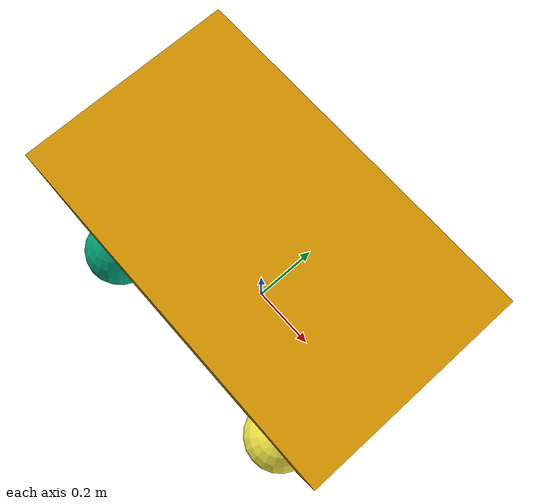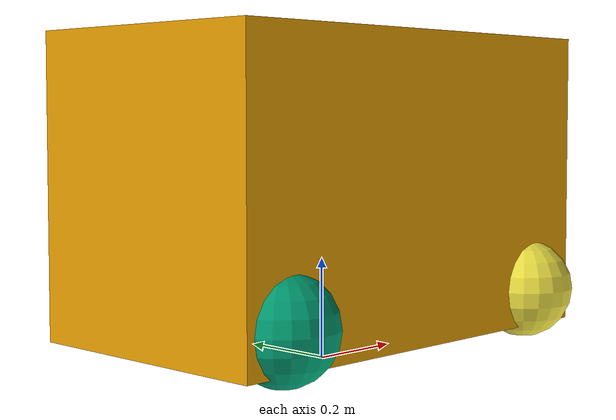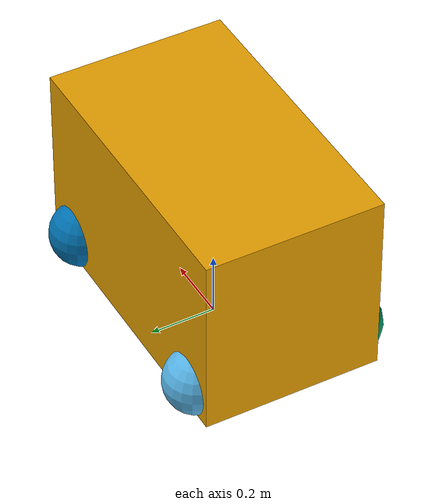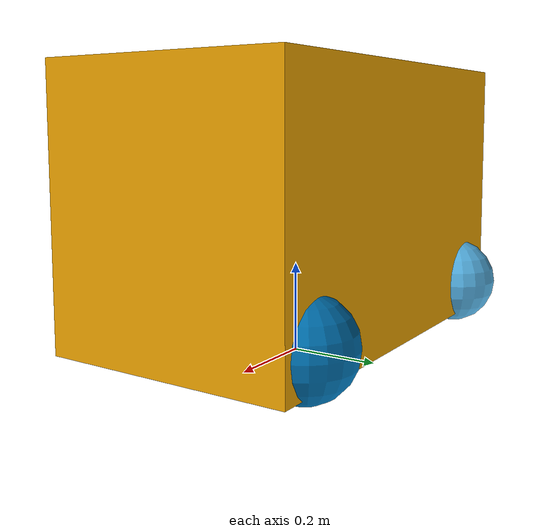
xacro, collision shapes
<?xml version="1.0"?>
<robot xmlns:xacro="http://www.ros.org/wiki/xacro" name="kuka_omnirob_iisy">
  <xacro:include filename="$(find omnirob_description)/urdf/omnirob_macro.xacro"/>

  <!-- Import omnirob urdf file -->
  <xacro:omnirob prefix="platform_" package_name="omnirob_description"/>

  <!-- Import control_xacro -->
  <xacro:include filename="$(find omnirob_description)/config/omnirob.ros2_control.xacro"/>
  <xacro:omnirob_ros2_control/>

</robot>

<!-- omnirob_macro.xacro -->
<robot name="omnirob" xmlns:xacro="http://www.ros.org/wiki/xacro" xmlns:gz="http://gazebosim.org/schema">
    <!-- Helper xacros -->
	<xacro:macro name="omnirob" params="prefix package_name">

		<link name="${prefix}base_link">
			<inertial>
				<mass value="250" />
				<origin rpy="0 0 0.1" xyz="0 -0.00000 0.24" />
				<inertia ixx="25.77086" ixy="-0.0" ixz="-0.0" iyy="53.79704" iyz="-0.0" izz="58.79601" />
			</inertial>
			<visual>
				<origin rpy="0 0 0" xyz="0 0 0" />
				<geometry>
					<mesh filename="package://${package_name}/meshes/omnirobBaseRot.dae" scale="1 1 1" />
				</geometry>
			</visual>
			<collision>
				<origin rpy="0 0 0" xyz="0 0 0.35" />
				<geometry>
					<box size="0.915855 0.547 0.585000"/>
				</geometry>
			</collision>
		</link>

		<link name="bl_wheel">
			<inertial>
				<origin rpy="0 0 0" xyz="0 0 0" />
				<inertia ixx="0.012412" ixy="-0.000712" ixz="0.000503" iyy="0.015218" iyz="-0.000004" izz="0.011764" />
				<mass value="0.400000" />
			</inertial>
			<visual>
				<origin rpy="0 0 0" xyz="0 0.037 0" />
				<geometry>
					<mesh filename="package://${package_name}/meshes/omnirobBLWheelRot.dae" scale="1 1 1" />
				</geometry>
			</visual>
			<collision>
				<geometry>
					<sphere radius="0.1"/>
				</geometry>
			</collision>
		</link>

		<joint name="bl_wheel_joint" type="continuous">
			<origin rpy="0 0 0" xyz="-0.347000 0.242000 0.130000" />
			<axis xyz="0 1 0" />
			<parent link="${prefix}base_link" />
			<child link="bl_wheel" />
			<limit effort="10000" velocity="10"/>
    		<dynamics damping="1.0" friction="1.0"/>
		</joint>

		<link name="br_wheel">
			<inertial>
				<origin rpy="0 0 0" xyz="0 0 0" />
				<inertia ixx="0.012412" ixy="-0.000712" ixz="0.000503" iyy="0.015218" iyz="-0.000004" izz="0.011764" />
				<mass value="0.400000" />
			</inertial>
			<visual>
				<origin rpy="0 0 0" xyz="0 -0.0 0" />
				<geometry>
					<mesh filename="package://${package_name}/meshes/omnirobBRWheelRot.dae" scale="1 1 1" />
				</geometry>
			</visual>
			<collision>
				<geometry>
					<sphere radius="0.1"/>
				</geometry>
			</collision>
		</link>

		<joint name="br_wheel_joint" type="continuous">
			<origin rpy="0 0 0" xyz="-0.347000 -0.242000 0.130000" />
			<axis xyz="0 1 0" />
			<parent link="${prefix}base_link" />
			<child link="br_wheel" />
			<limit effort="10000" velocity="10"/>
    		<dynamics damping="1.0" friction="1.0"/>
		</joint>

		<link name="fr_wheel">
			<inertial>
				<origin rpy="0 0 0" xyz="0 0 0" />
				<inertia ixx="0.012412" ixy="-0.000712" ixz="0.000503" iyy="0.015218" iyz="-0.000004" izz="0.011764" />
				<mass value="0.400000" />
			</inertial>
			<visual>
				<origin rpy="0 0 0" xyz="0 -0.0 0" />
				<geometry>
					<mesh filename="package://${package_name}/meshes/omnirobFRWheelRot.dae" scale="1 1 1" />
				</geometry>
			</visual>
			<collision>
				<geometry>
					<sphere radius="0.1"/>
				</geometry>
			</collision>
		</link>

		<joint name="fr_wheel_joint" type="continuous">
			<origin rpy="0 0 0" xyz="0.347000 -0.242000 0.130000" />
			<axis xyz="0 1 0" />
			<parent link="${prefix}base_link" />
			<child link="fr_wheel" />
			<limit effort="10000" velocity="10"/>
    		<dynamics damping="1.0" friction="1.0"/>
		</joint>

		<link name="fl_wheel">
			<inertial>
				<origin rpy="0 0 0" xyz="0 0 0" />
				<inertia ixx="0.012412" ixy="-0.000712" ixz="0.000503" iyy="0.015218" iyz="-0.000004" izz="0.011764" />
				<mass value="0.400000" />
			</inertial>
			<visual>
				<origin rpy="0 0 0" xyz="0 0.0 0" />
				<geometry>
					<mesh filename="package://${package_name}/meshes/omnirobFLWheelRot.dae" scale="1 1 1" />
				</geometry>
			</visual>
			<collision>
				<geometry>
					<sphere radius="0.1"/>
				</geometry>
			</collision>
		</link>

		<joint name="fl_wheel_joint" type="continuous">
			<origin rpy="0 0 0" xyz="0.347000 0.242000 0.130000" />
			<axis xyz="0 1 0" />
			<parent link="${prefix}base_link" />
			<child link="fl_wheel" />
			<limit effort="10000" velocity="10"/>
    		<dynamics damping="1.0" friction="1.0"/>
		</joint>

		<!-- Gazebo frictions -->
		<gazebo reference='fl_wheel'>
			<collision>
			<surface>
				<friction>
				<ode>
					<mu>1.5</mu>
					<mu2>0.0</mu2>
					<fdir1 gz:expressed_in="${prefix}base_link">1 -1 0</fdir1>
				</ode>
				</friction>
			</surface>
			</collision>
		</gazebo>

		<gazebo reference='bl_wheel'>
			<collision>
			<surface>
				<friction>
				<ode>
					<mu>1.5</mu>
					<mu2>0.0</mu2>
					<fdir1 gz:expressed_in="${prefix}base_link">1 1 0</fdir1>
				</ode>
				</friction>
			</surface>
			</collision>
		</gazebo>

		<gazebo reference='fr_wheel'>
			<collision>
			<surface>
				<friction>
				<ode>
					<mu>1.5</mu>
					<mu2>0.0</mu2>
					<fdir1 gz:expressed_in="${prefix}base_link">1 1 0</fdir1>
				</ode>
				</friction>
			</surface>
			</collision>
		</gazebo>

		<gazebo reference='br_wheel'>
			<collision>
			<surface>
				<friction>
				<ode>
					<mu>1.5</mu>
					<mu2>0.0</mu2>
					<fdir1 gz:expressed_in="${prefix}base_link">1 -1 0</fdir1>
				</ode>
				</friction>
			</surface>
			</collision>
		</gazebo>

		<gazebo reference="${prefix}base_link">
			<mu1>0.000002</mu1>
			<mu2>0.000002</mu2>
		</gazebo>

	</xacro:macro>
</robot>
